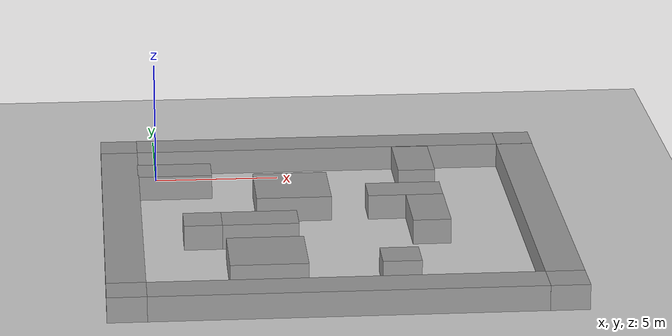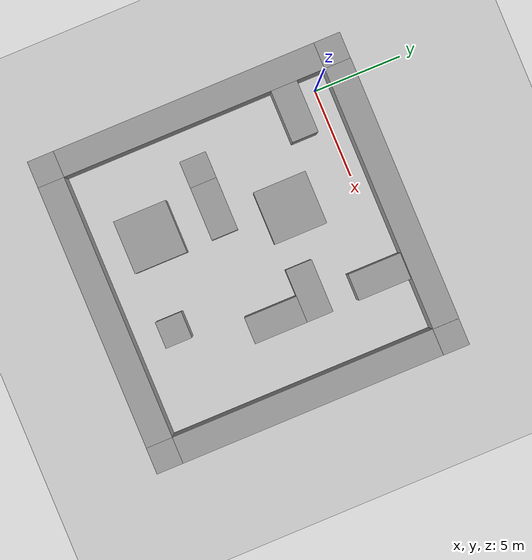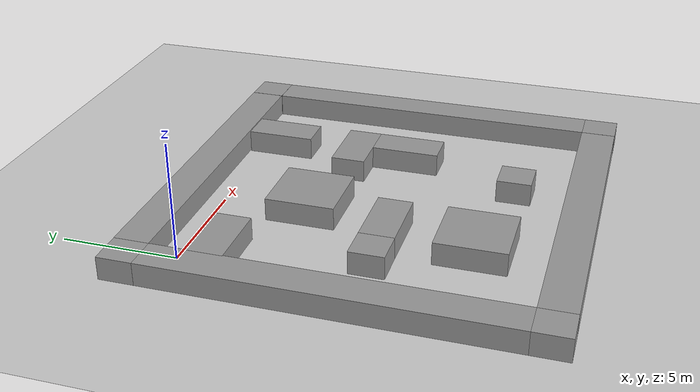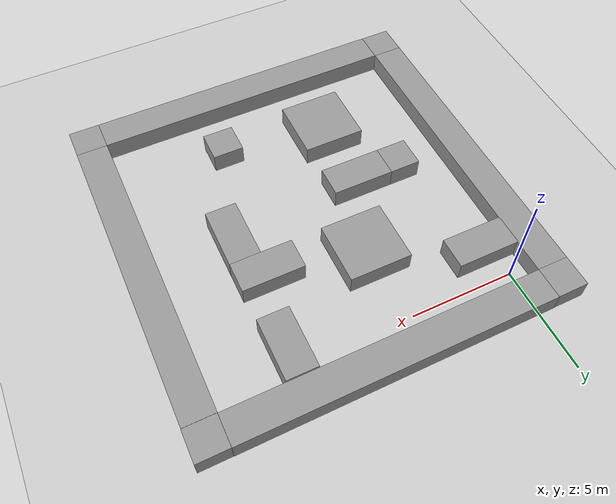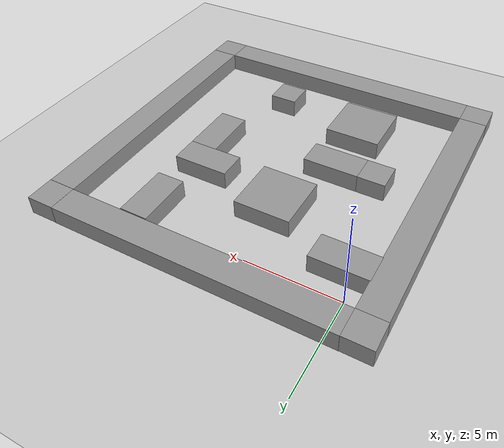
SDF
<sdf version="1.6">
 <world name="default">
  <light name="sun" type="directional">
   <pose>0 0 10 0 -0 0</pose>
   <diffuse>0.8 0.8 0.8 1</diffuse>
   <specular>0.2 0.2 0.2 1</specular>
   <attenuation>
    <range>1000</range>
    <constant>0.9</constant>
    <linear>0.01</linear>
    <quadratic>0.001</quadratic>
   </attenuation>
   <direction>-0.5 0.1 -0.9</direction>
  </light>
  <model name="ground_plane">
   <static>1</static>
   <link name="link">
    <collision name="collision">
     <geometry><plane><normal>0 0 1</normal><size>100 100</size></plane></geometry>
     <surface>
      <contact><collide_bitmask>65535</collide_bitmask></contact>
      <friction><ode><mu>100</mu><mu2>50</mu2></ode></friction>
     </surface>
    </collision>
    <visual name="visual">
     <cast_shadows>0</cast_shadows>
     <geometry><plane><normal>0 0 1</normal><size>100 100</size></plane></geometry>
     <material>
      <script><uri>file://media/materials/scripts/gazebo.material</uri><name>Gazebo/Grey</name></script>
     </material>
    </visual>
   </link>
  </model>
  <gravity>0 0 -9.8</gravity>
  <magnetic_field>6e-06 2.3e-05 -4.2e-05</magnetic_field>
  <atmosphere type="adiabatic"/>
  <physics name="default_physics" default="0" type="ode">
   <max_step_size>0.001</max_step_size>
   <real_time_factor>1</real_time_factor>
   <real_time_update_rate>1000</real_time_update_rate>
  </physics>
  <scene><ambient>0.4 0.4 0.4 1</ambient><background>0.7 0.7 0.7 1</background><shadows>1</shadows></scene>
  <audio><device>default</device></audio>
  <spherical_coordinates>
   <surface_model>EARTH_WGS84</surface_model>
   <latitude_deg>0</latitude_deg>
   <longitude_deg>0</longitude_deg>
   <elevation>0</elevation>
   <heading_deg>0</heading_deg>
  </spherical_coordinates>
  <model name="Wall_15x1.5">
   <link name="link">
    <inertial>
     <mass>1</mass>
     <inertia>
      <ixx>0.166667</ixx>
      <ixy>0</ixy>
      <ixz>0</ixz>
      <iyy>0.166667</iyy>
      <iyz>0</iyz>
      <izz>0.166667</izz>
     </inertia>
    </inertial>
    <pose>-0.011326 -0.002302 -0 0 -0 0</pose>
    <visual name="visual">
     <geometry><box><size>1.5 15 1</size></box></geometry>
     <material>
      <script><name>Gazebo/Grey</name><uri>file://media/materials/scripts/gazebo.material</uri></script>
      <shader type="vertex"><normal_map>__default__</normal_map></shader>
      <ambient>1 1 1 1</ambient>
      <diffuse>0.7 0.7 0.7 1</diffuse>
      <specular>0.01 0.01 0.01 1</specular>
      <emissive>0 0 0 1</emissive>
     </material>
    </visual>
    <collision name="collision">
     <geometry><box><size>1.5 15 1</size></box></geometry>
     <surface>
      <friction>
       <ode><mu>1</mu><mu2>1</mu2><fdir1>0 0 0</fdir1><slip1>0</slip1><slip2>0</slip2></ode>
       <torsional>
        <coefficient>1</coefficient>
        <patch_radius>0</patch_radius>
        <surface_radius>0</surface_radius>
        <use_patch_radius>1</use_patch_radius>
        <ode><slip>0</slip></ode>
       </torsional>
      </friction>
      <bounce><restitution_coefficient>0</restitution_coefficient><threshold>1e+06</threshold></bounce>
      <contact>
       <collide_without_contact>0</collide_without_contact>
       <collide_without_contact_bitmask>1</collide_without_contact_bitmask>
       <collide_bitmask>1</collide_bitmask>
       <ode>
        <soft_cfm>0</soft_cfm>
        <soft_erp>0.2</soft_erp>
        <kp>1e+13</kp>
        <kd>1</kd>
        <max_vel>0.01</max_vel>
        <min_depth>0</min_depth>
       </ode>
       <bullet>
        <split_impulse>1</split_impulse>
        <split_impulse_penetration_threshold>-0.01</split_impulse_penetration_threshold>
        <soft_cfm>0</soft_cfm>
        <soft_erp>0.2</soft_erp>
        <kp>1e+13</kp>
        <kd>1</kd>
       </bullet>
      </contact>
     </surface>
    </collision>
   </link>
   <static>1</static>
   <pose>6.75 1.5 0.5 0 0 -1.5708</pose>
  </model>
  <model name="Box_1,5x1,5">
   <link name="link_2">
    <inertial>
     <mass>1</mass>
     <inertia>
      <ixx>0.166667</ixx>
      <ixy>0</ixy>
      <ixz>0</ixz>
      <iyy>0.166667</iyy>
      <iyz>0</iyz>
      <izz>0.166667</izz>
     </inertia>
    </inertial>
    <visual name="visual">
     <geometry><box><size>1.5 1.5 1</size></box></geometry>
     <material>
      <lighting>1</lighting>
      <script><uri>file://media/materials/scripts/gazebo.material</uri><name>Gazebo/Grey</name></script>
      <shader type="vertex"><normal_map>__default__</normal_map></shader>
      <ambient>1 1 1 1</ambient>
      <diffuse>0.7 0.7 0.7 1</diffuse>
      <specular>0.01 0.01 0.01 1</specular>
      <emissive>0 0 0 1</emissive>
     </material>
    </visual>
    <collision name="collision">
     <geometry><box><size>1.5 1.5 1</size></box></geometry>
     <surface>
      <friction>
       <ode><mu>1</mu><mu2>1</mu2><fdir1>0 0 0</fdir1><slip1>0</slip1><slip2>0</slip2></ode>
       <torsional>
        <coefficient>1</coefficient>
        <patch_radius>0</patch_radius>
        <surface_radius>0</surface_radius>
        <use_patch_radius>1</use_patch_radius>
        <ode><slip>0</slip></ode>
       </torsional>
      </friction>
      <bounce><restitution_coefficient>0</restitution_coefficient><threshold>1e+06</threshold></bounce>
      <contact>
       <collide_without_contact>0</collide_without_contact>
       <collide_without_contact_bitmask>1</collide_without_contact_bitmask>
       <collide_bitmask>1</collide_bitmask>
       <ode>
        <soft_cfm>0</soft_cfm>
        <soft_erp>0.2</soft_erp>
        <kp>1e+13</kp>
        <kd>1</kd>
        <max_vel>0.01</max_vel>
        <min_depth>0</min_depth>
       </ode>
       <bullet>
        <split_impulse>1</split_impulse>
        <split_impulse_penetration_threshold>-0.01</split_impulse_penetration_threshold>
        <soft_cfm>0</soft_cfm>
        <soft_erp>0.2</soft_erp>
        <kp>1e+13</kp>
        <kd>1</kd>
       </bullet>
      </contact>
     </surface>
    </collision>
   </link>
   <static>1</static>
   <pose>-1.5 1.5 0.5 0 -0 0</pose>
  </model>
  <model name="Wall_15x1.5_clone">
   <link name="link">
    <inertial>
     <mass>1</mass>
     <inertia>
      <ixx>0.166667</ixx>
      <ixy>0</ixy>
      <ixz>0</ixz>
      <iyy>0.166667</iyy>
      <iyz>0</iyz>
      <izz>0.166667</izz>
     </inertia>
    </inertial>
    <pose>-0.011326 -0.002302 -0 0 -0 0</pose>
    <visual name="visual">
     <geometry><box><size>1.5 15 1</size></box></geometry>
     <material>
      <script><name>Gazebo/Grey</name><uri>file://media/materials/scripts/gazebo.material</uri></script>
      <shader type="vertex"><normal_map>__default__</normal_map></shader>
      <ambient>1 1 1 1</ambient>
      <diffuse>0.7 0.7 0.7 1</diffuse>
      <specular>0.01 0.01 0.01 1</specular>
      <emissive>0 0 0 1</emissive>
     </material>
    </visual>
    <collision name="collision">
     <geometry><box><size>1.5 15 1</size></box></geometry>
     <surface>
      <friction>
       <ode><mu>1</mu><mu2>1</mu2><fdir1>0 0 0</fdir1><slip1>0</slip1><slip2>0</slip2></ode>
       <torsional>
        <coefficient>1</coefficient>
        <patch_radius>0</patch_radius>
        <surface_radius>0</surface_radius>
        <use_patch_radius>1</use_patch_radius>
        <ode><slip>0</slip></ode>
       </torsional>
      </friction>
      <bounce><restitution_coefficient>0</restitution_coefficient><threshold>1e+06</threshold></bounce>
      <contact>
       <collide_without_contact>0</collide_without_contact>
       <collide_without_contact_bitmask>1</collide_without_contact_bitmask>
       <collide_bitmask>1</collide_bitmask>
       <ode>
        <soft_cfm>0</soft_cfm>
        <soft_erp>0.2</soft_erp>
        <kp>1e+13</kp>
        <kd>1</kd>
        <max_vel>0.01</max_vel>
        <min_depth>0</min_depth>
       </ode>
       <bullet>
        <split_impulse>1</split_impulse>
        <split_impulse_penetration_threshold>-0.01</split_impulse_penetration_threshold>
        <soft_cfm>0</soft_cfm>
        <soft_erp>0.2</soft_erp>
        <kp>1e+13</kp>
        <kd>1</kd>
       </bullet>
      </contact>
     </surface>
    </collision>
   </link>
   <static>1</static>
   <pose>-1.48867 -6.7477 0.5 0 -0 0</pose>
  </model>
  <model name="Wall_15x1.5_clone_0">
   <link name="link">
    <inertial>
     <mass>1</mass>
     <inertia>
      <ixx>0.166667</ixx>
      <ixy>0</ixy>
      <ixz>0</ixz>
      <iyy>0.166667</iyy>
      <iyz>0</iyz>
      <izz>0.166667</izz>
     </inertia>
    </inertial>
    <pose>-0.011326 -0.002302 -0 0 -0 0</pose>
    <visual name="visual">
     <geometry><box><size>1.5 15 1</size></box></geometry>
     <material>
      <script><name>Gazebo/Grey</name><uri>file://media/materials/scripts/gazebo.material</uri></script>
      <shader type="vertex"><normal_map>__default__</normal_map></shader>
      <ambient>1 1 1 1</ambient>
      <diffuse>0.7 0.7 0.7 1</diffuse>
      <specular>0.01 0.01 0.01 1</specular>
      <emissive>0 0 0 1</emissive>
     </material>
    </visual>
    <collision name="collision">
     <geometry><box><size>1.5 15 1</size></box></geometry>
     <surface>
      <friction>
       <ode><mu>1</mu><mu2>1</mu2><fdir1>0 0 0</fdir1><slip1>0</slip1><slip2>0</slip2></ode>
       <torsional>
        <coefficient>1</coefficient>
        <patch_radius>0</patch_radius>
        <surface_radius>0</surface_radius>
        <use_patch_radius>1</use_patch_radius>
        <ode><slip>0</slip></ode>
       </torsional>
      </friction>
      <bounce><restitution_coefficient>0</restitution_coefficient><threshold>1e+06</threshold></bounce>
      <contact>
       <collide_without_contact>0</collide_without_contact>
       <collide_without_contact_bitmask>1</collide_without_contact_bitmask>
       <collide_bitmask>1</collide_bitmask>
       <ode>
        <soft_cfm>0</soft_cfm>
        <soft_erp>0.2</soft_erp>
        <kp>1e+13</kp>
        <kd>1</kd>
        <max_vel>0.01</max_vel>
        <min_depth>0</min_depth>
       </ode>
       <bullet>
        <split_impulse>1</split_impulse>
        <split_impulse_penetration_threshold>-0.01</split_impulse_penetration_threshold>
        <soft_cfm>0</soft_cfm>
        <soft_erp>0.2</soft_erp>
        <kp>1e+13</kp>
        <kd>1</kd>
       </bullet>
      </contact>
     </surface>
    </collision>
   </link>
   <static>1</static>
   <pose>15 -6.7523 0.5 0 -0 0</pose>
  </model>
  <model name="Wall_15x1.5_clone_1">
   <link name="link">
    <inertial>
     <mass>1</mass>
     <inertia>
      <ixx>0.166667</ixx>
      <ixy>0</ixy>
      <ixz>0</ixz>
      <iyy>0.166667</iyy>
      <iyz>0</iyz>
      <izz>0.166667</izz>
     </inertia>
    </inertial>
    <pose>-0.011326 -0.002302 -0 0 -0 0</pose>
    <visual name="visual">
     <geometry><box><size>1.5 15 1</size></box></geometry>
     <material>
      <script><name>Gazebo/Grey</name><uri>file://media/materials/scripts/gazebo.material</uri></script>
      <shader type="vertex"><normal_map>__default__</normal_map></shader>
      <ambient>1 1 1 1</ambient>
      <diffuse>0.7 0.7 0.7 1</diffuse>
      <specular>0.01 0.01 0.01 1</specular>
      <emissive>0 0 0 1</emissive>
     </material>
    </visual>
    <collision name="collision">
     <geometry><box><size>1.5 15 1</size></box></geometry>
     <surface>
      <friction>
       <ode><mu>1</mu><mu2>1</mu2><fdir1>0 0 0</fdir1><slip1>0</slip1><slip2>0</slip2></ode>
       <torsional>
        <coefficient>1</coefficient>
        <patch_radius>0</patch_radius>
        <surface_radius>0</surface_radius>
        <use_patch_radius>1</use_patch_radius>
        <ode><slip>0</slip></ode>
       </torsional>
      </friction>
      <bounce><restitution_coefficient>0</restitution_coefficient><threshold>1e+06</threshold></bounce>
      <contact>
       <collide_without_contact>0</collide_without_contact>
       <collide_without_contact_bitmask>1</collide_without_contact_bitmask>
       <collide_bitmask>1</collide_bitmask>
       <ode>
        <soft_cfm>0</soft_cfm>
        <soft_erp>0.2</soft_erp>
        <kp>1e+13</kp>
        <kd>1</kd>
        <max_vel>0.01</max_vel>
        <min_depth>0</min_depth>
       </ode>
       <bullet>
        <split_impulse>1</split_impulse>
        <split_impulse_penetration_threshold>-0.01</split_impulse_penetration_threshold>
        <soft_cfm>0</soft_cfm>
        <soft_erp>0.2</soft_erp>
        <kp>1e+13</kp>
        <kd>1</kd>
       </bullet>
      </contact>
     </surface>
    </collision>
   </link>
   <static>1</static>
   <pose>6.7477 -14.9887 0.499942 7e-06 -7e-06 1.5708</pose>
  </model>
  <model name="Box_1,5x1,5_clone">
   <link name="link_2">
    <inertial>
     <mass>1</mass>
     <inertia>
      <ixx>0.166667</ixx>
      <ixy>0</ixy>
      <ixz>0</ixz>
      <iyy>0.166667</iyy>
      <iyz>0</iyz>
      <izz>0.166667</izz>
     </inertia>
    </inertial>
    <visual name="visual">
     <geometry><box><size>1.5 1.5 1</size></box></geometry>
     <material>
      <lighting>1</lighting>
      <script><uri>file://media/materials/scripts/gazebo.material</uri><name>Gazebo/Grey</name></script>
      <shader type="vertex"><normal_map>__default__</normal_map></shader>
      <ambient>1 1 1 1</ambient>
      <diffuse>0.7 0.7 0.7 1</diffuse>
      <specular>0.01 0.01 0.01 1</specular>
      <emissive>0 0 0 1</emissive>
     </material>
    </visual>
    <collision name="collision">
     <geometry><box><size>1.5 1.5 1</size></box></geometry>
     <surface>
      <friction>
       <ode><mu>1</mu><mu2>1</mu2><fdir1>0 0 0</fdir1><slip1>0</slip1><slip2>0</slip2></ode>
       <torsional>
        <coefficient>1</coefficient>
        <patch_radius>0</patch_radius>
        <surface_radius>0</surface_radius>
        <use_patch_radius>1</use_patch_radius>
        <ode><slip>0</slip></ode>
       </torsional>
      </friction>
      <bounce><restitution_coefficient>0</restitution_coefficient><threshold>1e+06</threshold></bounce>
      <contact>
       <collide_without_contact>0</collide_without_contact>
       <collide_without_contact_bitmask>1</collide_without_contact_bitmask>
       <collide_bitmask>1</collide_bitmask>
       <ode>
        <soft_cfm>0</soft_cfm>
        <soft_erp>0.2</soft_erp>
        <kp>1e+13</kp>
        <kd>1</kd>
        <max_vel>0.01</max_vel>
        <min_depth>0</min_depth>
       </ode>
       <bullet>
        <split_impulse>1</split_impulse>
        <split_impulse_penetration_threshold>-0.01</split_impulse_penetration_threshold>
        <soft_cfm>0</soft_cfm>
        <soft_erp>0.2</soft_erp>
        <kp>1e+13</kp>
        <kd>1</kd>
       </bullet>
      </contact>
     </surface>
    </collision>
   </link>
   <static>1</static>
   <pose>15 1.5 0.500002 0 7e-06 -1.5708</pose>
  </model>
  <model name="Box_1,5x1,5_clone_0">
   <link name="link_2">
    <inertial>
     <mass>1</mass>
     <inertia>
      <ixx>0.166667</ixx>
      <ixy>0</ixy>
      <ixz>0</ixz>
      <iyy>0.166667</iyy>
      <iyz>0</iyz>
      <izz>0.166667</izz>
     </inertia>
    </inertial>
    <visual name="visual">
     <geometry><box><size>1.5 1.5 1</size></box></geometry>
     <material>
      <lighting>1</lighting>
      <script><uri>file://media/materials/scripts/gazebo.material</uri><name>Gazebo/Grey</name></script>
      <shader type="vertex"><normal_map>__default__</normal_map></shader>
      <ambient>1 1 1 1</ambient>
      <diffuse>0.7 0.7 0.7 1</diffuse>
      <specular>0.01 0.01 0.01 1</specular>
      <emissive>0 0 0 1</emissive>
     </material>
    </visual>
    <collision name="collision">
     <geometry><box><size>1.5 1.5 1</size></box></geometry>
     <surface>
      <friction>
       <ode><mu>1</mu><mu2>1</mu2><fdir1>0 0 0</fdir1><slip1>0</slip1><slip2>0</slip2></ode>
       <torsional>
        <coefficient>1</coefficient>
        <patch_radius>0</patch_radius>
        <surface_radius>0</surface_radius>
        <use_patch_radius>1</use_patch_radius>
        <ode><slip>0</slip></ode>
       </torsional>
      </friction>
      <bounce><restitution_coefficient>0</restitution_coefficient><threshold>1e+06</threshold></bounce>
      <contact>
       <collide_without_contact>0</collide_without_contact>
       <collide_without_contact_bitmask>1</collide_without_contact_bitmask>
       <collide_bitmask>1</collide_bitmask>
       <ode>
        <soft_cfm>0</soft_cfm>
        <soft_erp>0.2</soft_erp>
        <kp>1e+13</kp>
        <kd>1</kd>
        <max_vel>0.01</max_vel>
        <min_depth>0</min_depth>
       </ode>
       <bullet>
        <split_impulse>1</split_impulse>
        <split_impulse_penetration_threshold>-0.01</split_impulse_penetration_threshold>
        <soft_cfm>0</soft_cfm>
        <soft_erp>0.2</soft_erp>
        <kp>1e+13</kp>
        <kd>1</kd>
       </bullet>
      </contact>
     </surface>
    </collision>
   </link>
   <static>1</static>
   <pose>-1.5 -15 0.500002 7e-06 -0 1.5708</pose>
  </model>
  <model name="Box_1,5x1,5_clone_1">
   <link name="link_2">
    <inertial>
     <mass>1</mass>
     <inertia>
      <ixx>0.166667</ixx>
      <ixy>0</ixy>
      <ixz>0</ixz>
      <iyy>0.166667</iyy>
      <iyz>0</iyz>
      <izz>0.166667</izz>
     </inertia>
    </inertial>
    <visual name="visual">
     <geometry><box><size>1.5 1.5 1</size></box></geometry>
     <material>
      <lighting>1</lighting>
      <script><uri>file://media/materials/scripts/gazebo.material</uri><name>Gazebo/Grey</name></script>
      <shader type="vertex"><normal_map>__default__</normal_map></shader>
      <ambient>1 1 1 1</ambient>
      <diffuse>0.7 0.7 0.7 1</diffuse>
      <specular>0.01 0.01 0.01 1</specular>
      <emissive>0 0 0 1</emissive>
     </material>
    </visual>
    <collision name="collision">
     <geometry><box><size>1.5 1.5 1</size></box></geometry>
     <surface>
      <friction>
       <ode><mu>1</mu><mu2>1</mu2><fdir1>0 0 0</fdir1><slip1>0</slip1><slip2>0</slip2></ode>
       <torsional>
        <coefficient>1</coefficient>
        <patch_radius>0</patch_radius>
        <surface_radius>0</surface_radius>
        <use_patch_radius>1</use_patch_radius>
        <ode><slip>0</slip></ode>
       </torsional>
      </friction>
      <bounce><restitution_coefficient>0</restitution_coefficient><threshold>1e+06</threshold></bounce>
      <contact>
       <collide_without_contact>0</collide_without_contact>
       <collide_without_contact_bitmask>1</collide_without_contact_bitmask>
       <collide_bitmask>1</collide_bitmask>
       <ode>
        <soft_cfm>0</soft_cfm>
        <soft_erp>0.2</soft_erp>
        <kp>1e+13</kp>
        <kd>1</kd>
        <max_vel>0.01</max_vel>
        <min_depth>0</min_depth>
       </ode>
       <bullet>
        <split_impulse>1</split_impulse>
        <split_impulse_penetration_threshold>-0.01</split_impulse_penetration_threshold>
        <soft_cfm>0</soft_cfm>
        <soft_erp>0.2</soft_erp>
        <kp>1e+13</kp>
        <kd>1</kd>
       </bullet>
      </contact>
     </surface>
    </collision>
   </link>
   <static>1</static>
   <pose>14.9887 -15.0046 0.500002 7e-06 -0 1.5708</pose>
  </model>
  <model name="Box_3x3">
   <link name="link_2">
    <inertial>
     <mass>1</mass>
     <inertia>
      <ixx>0.166667</ixx>
      <ixy>0</ixy>
      <ixz>0</ixz>
      <iyy>0.166667</iyy>
      <iyz>0</iyz>
      <izz>0.166667</izz>
     </inertia>
    </inertial>
    <pose>-1.95154 -0.424988 0.5 0 -0 0</pose>
    <visual name="visual">
     <geometry><box><size>3 3 1</size></box></geometry>
     <material>
      <lighting>1</lighting>
      <script><uri>file://media/materials/scripts/gazebo.material</uri><name>Gazebo/Grey</name></script>
      <shader type="vertex"><normal_map>__default__</normal_map></shader>
      <ambient>1 1 1 1</ambient>
      <diffuse>0.7 0.7 0.7 1</diffuse>
      <specular>0.01 0.01 0.01 1</specular>
      <emissive>0 0 0 1</emissive>
     </material>
    </visual>
    <collision name="collision">
     <geometry><box><size>3 3 1</size></box></geometry>
     <surface>
      <friction>
       <ode><mu>1</mu><mu2>1</mu2><fdir1>0 0 0</fdir1><slip1>0</slip1><slip2>0</slip2></ode>
       <torsional>
        <coefficient>1</coefficient>
        <patch_radius>0</patch_radius>
        <surface_radius>0</surface_radius>
        <use_patch_radius>1</use_patch_radius>
        <ode><slip>0</slip></ode>
       </torsional>
      </friction>
      <bounce><restitution_coefficient>0</restitution_coefficient><threshold>1e+06</threshold></bounce>
      <contact>
       <collide_without_contact>0</collide_without_contact>
       <collide_without_contact_bitmask>1</collide_without_contact_bitmask>
       <collide_bitmask>1</collide_bitmask>
       <ode>
        <soft_cfm>0</soft_cfm>
        <soft_erp>0.2</soft_erp>
        <kp>1e+13</kp>
        <kd>1</kd>
        <max_vel>0.01</max_vel>
        <min_depth>0</min_depth>
       </ode>
       <bullet>
        <split_impulse>1</split_impulse>
        <split_impulse_penetration_threshold>-0.01</split_impulse_penetration_threshold>
        <soft_cfm>0</soft_cfm>
        <soft_erp>0.2</soft_erp>
        <kp>1e+13</kp>
        <kd>1</kd>
       </bullet>
      </contact>
     </surface>
    </collision>
   </link>
   <static>1</static>
   <pose>7.32441 -3.3524 0 0 -0 0</pose>
  </model>
  <model name="Box_3x1,5">
   <link name="link_1">
    <inertial>
     <mass>3150</mass>
     <inertia><ixx>853.125</ixx><ixy>0</ixy><ixz>0</ixz><iyy>2625</iyy><iyz>0</iyz><izz>2953.12</izz></inertia>
    </inertial>
    <pose>-0.286312 -0.085157 0.5 0 -0 0</pose>
    <visual name="visual">
     <geometry><box><size>3 1.5 1</size></box></geometry>
     <material>
      <lighting>1</lighting>
      <script><uri>file://media/materials/scripts/gazebo.material</uri><name>Gazebo/Grey</name></script>
      <shader type="vertex"><normal_map>__default__</normal_map></shader>
      <ambient>1 1 1 1</ambient>
      <diffuse>0.7 0.7 0.7 1</diffuse>
      <specular>0.01 0.01 0.01 1</specular>
      <emissive>0 0 0 1</emissive>
     </material>
    </visual>
    <collision name="collision">
     <geometry><box><size>3 1.5 1</size></box></geometry>
     <surface>
      <friction>
       <ode><mu>1</mu><mu2>1</mu2><fdir1>0 0 0</fdir1><slip1>0</slip1><slip2>0</slip2></ode>
       <torsional>
        <coefficient>1</coefficient>
        <patch_radius>0</patch_radius>
        <surface_radius>0</surface_radius>
        <use_patch_radius>1</use_patch_radius>
        <ode><slip>0</slip></ode>
       </torsional>
      </friction>
      <bounce><restitution_coefficient>0</restitution_coefficient><threshold>1e+06</threshold></bounce>
      <contact>
       <collide_without_contact>0</collide_without_contact>
       <collide_without_contact_bitmask>1</collide_without_contact_bitmask>
       <collide_bitmask>1</collide_bitmask>
       <ode>
        <soft_cfm>0</soft_cfm>
        <soft_erp>0.2</soft_erp>
        <kp>1e+13</kp>
        <kd>1</kd>
        <max_vel>0.01</max_vel>
        <min_depth>0</min_depth>
       </ode>
       <bullet>
        <split_impulse>1</split_impulse>
        <split_impulse_penetration_threshold>-0.01</split_impulse_penetration_threshold>
        <soft_cfm>0</soft_cfm>
        <soft_erp>0.2</soft_erp>
        <kp>1e+13</kp>
        <kd>1</kd>
       </bullet>
      </contact>
     </surface>
    </collision>
   </link>
   <static>1</static>
   <pose>1 -1.5 0 0 -0 0</pose>
  </model>
  <model name="Box_3x1,5_0">
   <link name="link_1">
    <inertial>
     <mass>3150</mass>
     <inertia><ixx>853.125</ixx><ixy>0</ixy><ixz>0</ixz><iyy>2625</iyy><iyz>0</iyz><izz>2953.12</izz></inertia>
    </inertial>
    <pose>-0.286312 -0.085157 0.5 0 -0 0</pose>
    <visual name="visual">
     <geometry><box><size>3 1.5 1</size></box></geometry>
     <material>
      <lighting>1</lighting>
      <script><uri>file://media/materials/scripts/gazebo.material</uri><name>Gazebo/Grey</name></script>
      <shader type="vertex"><normal_map>__default__</normal_map></shader>
      <ambient>1 1 1 1</ambient>
      <diffuse>0.7 0.7 0.7 1</diffuse>
      <specular>0.01 0.01 0.01 1</specular>
      <emissive>0 0 0 1</emissive>
     </material>
    </visual>
    <collision name="collision">
     <geometry><box><size>3 1.5 1</size></box></geometry>
     <surface>
      <friction>
       <ode><mu>1</mu><mu2>1</mu2><fdir1>0 0 0</fdir1><slip1>0</slip1><slip2>0</slip2></ode>
       <torsional>
        <coefficient>1</coefficient>
        <patch_radius>0</patch_radius>
        <surface_radius>0</surface_radius>
        <use_patch_radius>1</use_patch_radius>
        <ode><slip>0</slip></ode>
       </torsional>
      </friction>
      <bounce><restitution_coefficient>0</restitution_coefficient><threshold>1e+06</threshold></bounce>
      <contact>
       <collide_without_contact>0</collide_without_contact>
       <collide_without_contact_bitmask>1</collide_without_contact_bitmask>
       <collide_bitmask>1</collide_bitmask>
       <ode>
        <soft_cfm>0</soft_cfm>
        <soft_erp>0.2</soft_erp>
        <kp>1e+13</kp>
        <kd>1</kd>
        <max_vel>0.01</max_vel>
        <min_depth>0</min_depth>
       </ode>
       <bullet>
        <split_impulse>1</split_impulse>
        <split_impulse_penetration_threshold>-0.01</split_impulse_penetration_threshold>
        <soft_cfm>0</soft_cfm>
        <soft_erp>0.2</soft_erp>
        <kp>1e+13</kp>
        <kd>1</kd>
       </bullet>
      </contact>
     </surface>
    </collision>
   </link>
   <static>1</static>
   <pose>10.5 -0.5 0 0 -0 1.57</pose>
  </model>
  <model name="Box_3x1,5_1">
   <link name="link_1">
    <inertial>
     <mass>3150</mass>
     <inertia><ixx>853.125</ixx><ixy>0</ixy><ixz>0</ixz><iyy>2625</iyy><iyz>0</iyz><izz>2953.12</izz></inertia>
    </inertial>
    <pose>-0.286312 -0.085157 0.5 0 -0 0</pose>
    <visual name="visual">
     <geometry><box><size>3 1.5 1</size></box></geometry>
     <material>
      <lighting>1</lighting>
      <script><uri>file://media/materials/scripts/gazebo.material</uri><name>Gazebo/Grey</name></script>
      <shader type="vertex"><normal_map>__default__</normal_map></shader>
      <ambient>1 1 1 1</ambient>
      <diffuse>0.7 0.7 0.7 1</diffuse>
      <specular>0.01 0.01 0.01 1</specular>
      <emissive>0 0 0 1</emissive>
     </material>
    </visual>
    <collision name="collision">
     <geometry><box><size>3 1.5 1</size></box></geometry>
     <surface>
      <friction>
       <ode><mu>1</mu><mu2>1</mu2><fdir1>0 0 0</fdir1><slip1>0</slip1><slip2>0</slip2></ode>
       <torsional>
        <coefficient>1</coefficient>
        <patch_radius>0</patch_radius>
        <surface_radius>0</surface_radius>
        <use_patch_radius>1</use_patch_radius>
        <ode><slip>0</slip></ode>
       </torsional>
      </friction>
      <bounce><restitution_coefficient>0</restitution_coefficient><threshold>1e+06</threshold></bounce>
      <contact>
       <collide_without_contact>0</collide_without_contact>
       <collide_without_contact_bitmask>1</collide_without_contact_bitmask>
       <collide_bitmask>1</collide_bitmask>
       <ode>
        <soft_cfm>0</soft_cfm>
        <soft_erp>0.2</soft_erp>
        <kp>1e+13</kp>
        <kd>1</kd>
        <max_vel>0.01</max_vel>
        <min_depth>0</min_depth>
       </ode>
       <bullet>
        <split_impulse>1</split_impulse>
        <split_impulse_penetration_threshold>-0.01</split_impulse_penetration_threshold>
        <soft_cfm>0</soft_cfm>
        <soft_erp>0.2</soft_erp>
        <kp>1e+13</kp>
        <kd>1</kd>
       </bullet>
      </contact>
     </surface>
    </collision>
   </link>
   <static>1</static>
   <pose>10.5148 -6.48453 0 0 -0 1.57</pose>
  </model>
  <model name="Box_3x1,5_2">
   <link name="link_1">
    <inertial>
     <mass>3150</mass>
     <inertia><ixx>853.125</ixx><ixy>0</ixy><ixz>0</ixz><iyy>2625</iyy><iyz>0</iyz><izz>2953.12</izz></inertia>
    </inertial>
    <pose>-0.286312 -0.085157 0.5 0 -0 0</pose>
    <visual name="visual">
     <geometry><box><size>3 1.5 1</size></box></geometry>
     <material>
      <lighting>1</lighting>
      <script><uri>file://media/materials/scripts/gazebo.material</uri><name>Gazebo/Grey</name></script>
      <shader type="vertex"><normal_map>__default__</normal_map></shader>
      <ambient>1 1 1 1</ambient>
      <diffuse>0.7 0.7 0.7 1</diffuse>
      <specular>0.01 0.01 0.01 1</specular>
      <emissive>0 0 0 1</emissive>
     </material>
    </visual>
    <collision name="collision">
     <geometry><box><size>3 1.5 1</size></box></geometry>
     <surface>
      <friction>
       <ode><mu>1</mu><mu2>1</mu2><fdir1>0 0 0</fdir1><slip1>0</slip1><slip2>0</slip2></ode>
       <torsional>
        <coefficient>1</coefficient>
        <patch_radius>0</patch_radius>
        <surface_radius>0</surface_radius>
        <use_patch_radius>1</use_patch_radius>
        <ode><slip>0</slip></ode>
       </torsional>
      </friction>
      <bounce><restitution_coefficient>0</restitution_coefficient><threshold>1e+06</threshold></bounce>
      <contact>
       <collide_without_contact>0</collide_without_contact>
       <collide_without_contact_bitmask>1</collide_without_contact_bitmask>
       <collide_bitmask>1</collide_bitmask>
       <ode>
        <soft_cfm>0</soft_cfm>
        <soft_erp>0.2</soft_erp>
        <kp>1e+13</kp>
        <kd>1</kd>
        <max_vel>0.01</max_vel>
        <min_depth>0</min_depth>
       </ode>
       <bullet>
        <split_impulse>1</split_impulse>
        <split_impulse_penetration_threshold>-0.01</split_impulse_penetration_threshold>
        <soft_cfm>0</soft_cfm>
        <soft_erp>0.2</soft_erp>
        <kp>1e+13</kp>
        <kd>1</kd>
       </bullet>
      </contact>
     </surface>
    </collision>
   </link>
   <static>1</static>
   <pose>10.1328 -4.44254 0 0 -0 0</pose>
  </model>
  <model name="Box_3x1,5_3">
   <link name="link_1">
    <inertial>
     <mass>3150</mass>
     <inertia><ixx>853.125</ixx><ixy>0</ixy><ixz>0</ixz><iyy>2625</iyy><iyz>0</iyz><izz>2953.12</izz></inertia>
    </inertial>
    <pose>-0.286312 -0.085157 0.5 0 -0 0</pose>
    <visual name="visual">
     <geometry><box><size>3 1.5 1</size></box></geometry>
     <material>
      <lighting>1</lighting>
      <script><uri>file://media/materials/scripts/gazebo.material</uri><name>Gazebo/Grey</name></script>
      <shader type="vertex"><normal_map>__default__</normal_map></shader>
      <ambient>1 1 1 1</ambient>
      <diffuse>0.7 0.7 0.7 1</diffuse>
      <specular>0.01 0.01 0.01 1</specular>
      <emissive>0 0 0 1</emissive>
     </material>
    </visual>
    <collision name="collision">
     <geometry><box><size>3 1.5 1</size></box></geometry>
     <surface>
      <friction>
       <ode><mu>1</mu><mu2>1</mu2><fdir1>0 0 0</fdir1><slip1>0</slip1><slip2>0</slip2></ode>
       <torsional>
        <coefficient>1</coefficient>
        <patch_radius>0</patch_radius>
        <surface_radius>0</surface_radius>
        <use_patch_radius>1</use_patch_radius>
        <ode><slip>0</slip></ode>
       </torsional>
      </friction>
      <bounce><restitution_coefficient>0</restitution_coefficient><threshold>1e+06</threshold></bounce>
      <contact>
       <collide_without_contact>0</collide_without_contact>
       <collide_without_contact_bitmask>1</collide_without_contact_bitmask>
       <collide_bitmask>1</collide_bitmask>
       <ode>
        <soft_cfm>0</soft_cfm>
        <soft_erp>0.2</soft_erp>
        <kp>1e+13</kp>
        <kd>1</kd>
        <max_vel>0.01</max_vel>
        <min_depth>0</min_depth>
       </ode>
       <bullet>
        <split_impulse>1</split_impulse>
        <split_impulse_penetration_threshold>-0.01</split_impulse_penetration_threshold>
        <soft_cfm>0</soft_cfm>
        <soft_erp>0.2</soft_erp>
        <kp>1e+13</kp>
        <kd>1</kd>
       </bullet>
      </contact>
     </surface>
    </collision>
   </link>
   <static>1</static>
   <pose>4.15918 -7.44223 0 0 -0 0</pose>
  </model>
  <model name="Box_1,5x1,5_0">
   <link name="link_2">
    <inertial>
     <mass>1</mass>
     <inertia>
      <ixx>0.166667</ixx>
      <ixy>0</ixy>
      <ixz>0</ixz>
      <iyy>0.166667</iyy>
      <iyz>0</iyz>
      <izz>0.166667</izz>
     </inertia>
    </inertial>
    <visual name="visual">
     <geometry><box><size>1.5 1.5 1</size></box></geometry>
     <material>
      <lighting>1</lighting>
      <script><uri>file://media/materials/scripts/gazebo.material</uri><name>Gazebo/Grey</name></script>
      <shader type="vertex"><normal_map>__default__</normal_map></shader>
      <ambient>1 1 1 1</ambient>
      <diffuse>0.7 0.7 0.7 1</diffuse>
      <specular>0.01 0.01 0.01 1</specular>
      <emissive>0 0 0 1</emissive>
     </material>
    </visual>
    <collision name="collision">
     <geometry><box><size>1.5 1.5 1</size></box></geometry>
     <surface>
      <friction>
       <ode><mu>1</mu><mu2>1</mu2><fdir1>0 0 0</fdir1><slip1>0</slip1><slip2>0</slip2></ode>
       <torsional>
        <coefficient>1</coefficient>
        <patch_radius>0</patch_radius>
        <surface_radius>0</surface_radius>
        <use_patch_radius>1</use_patch_radius>
        <ode><slip>0</slip></ode>
       </torsional>
      </friction>
      <bounce><restitution_coefficient>0</restitution_coefficient><threshold>1e+06</threshold></bounce>
      <contact>
       <collide_without_contact>0</collide_without_contact>
       <collide_without_contact_bitmask>1</collide_without_contact_bitmask>
       <collide_bitmask>1</collide_bitmask>
       <ode>
        <soft_cfm>0</soft_cfm>
        <soft_erp>0.2</soft_erp>
        <kp>1e+13</kp>
        <kd>1</kd>
        <max_vel>0.01</max_vel>
        <min_depth>0</min_depth>
       </ode>
       <bullet>
        <split_impulse>1</split_impulse>
        <split_impulse_penetration_threshold>-0.01</split_impulse_penetration_threshold>
        <soft_cfm>0</soft_cfm>
        <soft_erp>0.2</soft_erp>
        <kp>1e+13</kp>
        <kd>1</kd>
       </bullet>
      </contact>
     </surface>
    </collision>
   </link>
   <static>1</static>
   <pose>1.62287 -7.52739 0.5 0 -0 1.5708</pose>
  </model>
  <model name="Box_3x3_0">
   <link name="link_2">
    <inertial>
     <mass>1</mass>
     <inertia>
      <ixx>0.166667</ixx>
      <ixy>0</ixy>
      <ixz>0</ixz>
      <iyy>0.166667</iyy>
      <iyz>0</iyz>
      <izz>0.166667</izz>
     </inertia>
    </inertial>
    <pose>-1.95154 -0.424988 0.5 0 -0 0</pose>
    <visual name="visual">
     <geometry><box><size>3 3 1</size></box></geometry>
     <material>
      <lighting>1</lighting>
      <script><uri>file://media/materials/scripts/gazebo.material</uri><name>Gazebo/Grey</name></script>
      <shader type="vertex"><normal_map>__default__</normal_map></shader>
      <ambient>1 1 1 1</ambient>
      <diffuse>0.7 0.7 0.7 1</diffuse>
      <specular>0.01 0.01 0.01 1</specular>
      <emissive>0 0 0 1</emissive>
     </material>
    </visual>
    <collision name="collision">
     <geometry><box><size>3 3 1</size></box></geometry>
     <surface>
      <friction>
       <ode><mu>1</mu><mu2>1</mu2><fdir1>0 0 0</fdir1><slip1>0</slip1><slip2>0</slip2></ode>
       <torsional>
        <coefficient>1</coefficient>
        <patch_radius>0</patch_radius>
        <surface_radius>0</surface_radius>
        <use_patch_radius>1</use_patch_radius>
        <ode><slip>0</slip></ode>
       </torsional>
      </friction>
      <bounce><restitution_coefficient>0</restitution_coefficient><threshold>1e+06</threshold></bounce>
      <contact>
       <collide_without_contact>0</collide_without_contact>
       <collide_without_contact_bitmask>1</collide_without_contact_bitmask>
       <collide_bitmask>1</collide_bitmask>
       <ode>
        <soft_cfm>0</soft_cfm>
        <soft_erp>0.2</soft_erp>
        <kp>1e+13</kp>
        <kd>1</kd>
        <max_vel>0.01</max_vel>
        <min_depth>0</min_depth>
       </ode>
       <bullet>
        <split_impulse>1</split_impulse>
        <split_impulse_penetration_threshold>-0.01</split_impulse_penetration_threshold>
        <soft_cfm>0</soft_cfm>
        <soft_erp>0.2</soft_erp>
        <kp>1e+13</kp>
        <kd>1</kd>
       </bullet>
      </contact>
     </surface>
    </collision>
   </link>
   <static>1</static>
   <pose>5.90076 -10.8168 0 0 -0 0</pose>
  </model>
  <model name="Box_1,5x1,5_1">
   <link name="link_2">
    <inertial>
     <mass>1</mass>
     <inertia>
      <ixx>0.166667</ixx>
      <ixy>0</ixy>
      <ixz>0</ixz>
      <iyy>0.166667</iyy>
      <iyz>0</iyz>
      <izz>0.166667</izz>
     </inertia>
    </inertial>
    <visual name="visual">
     <geometry><box><size>1.5 1.5 1</size></box></geometry>
     <material>
      <lighting>1</lighting>
      <script><uri>file://media/materials/scripts/gazebo.material</uri><name>Gazebo/Grey</name></script>
      <shader type="vertex"><normal_map>__default__</normal_map></shader>
      <ambient>1 1 1 1</ambient>
      <diffuse>0.7 0.7 0.7 1</diffuse>
      <specular>0.01 0.01 0.01 1</specular>
      <emissive>0 0 0 1</emissive>
     </material>
    </visual>
    <collision name="collision">
     <geometry><box><size>1.5 1.5 1</size></box></geometry>
     <surface>
      <friction>
       <ode><mu>1</mu><mu2>1</mu2><fdir1>0 0 0</fdir1><slip1>0</slip1><slip2>0</slip2></ode>
       <torsional>
        <coefficient>1</coefficient>
        <patch_radius>0</patch_radius>
        <surface_radius>0</surface_radius>
        <use_patch_radius>1</use_patch_radius>
        <ode><slip>0</slip></ode>
       </torsional>
      </friction>
      <bounce><restitution_coefficient>0</restitution_coefficient><threshold>1e+06</threshold></bounce>
      <contact>
       <collide_without_contact>0</collide_without_contact>
       <collide_without_contact_bitmask>1</collide_without_contact_bitmask>
       <collide_bitmask>1</collide_bitmask>
       <ode>
        <soft_cfm>0</soft_cfm>
        <soft_erp>0.2</soft_erp>
        <kp>1e+13</kp>
        <kd>1</kd>
        <max_vel>0.01</max_vel>
        <min_depth>0</min_depth>
       </ode>
       <bullet>
        <split_impulse>1</split_impulse>
        <split_impulse_penetration_threshold>-0.01</split_impulse_penetration_threshold>
        <soft_cfm>0</soft_cfm>
        <soft_erp>0.2</soft_erp>
        <kp>1e+13</kp>
        <kd>1</kd>
       </bullet>
      </contact>
     </surface>
    </collision>
   </link>
   <static>1</static>
   <pose>9 -11.9993 0.5 0 -0 0</pose>
  </model>
 </world>
</sdf>
